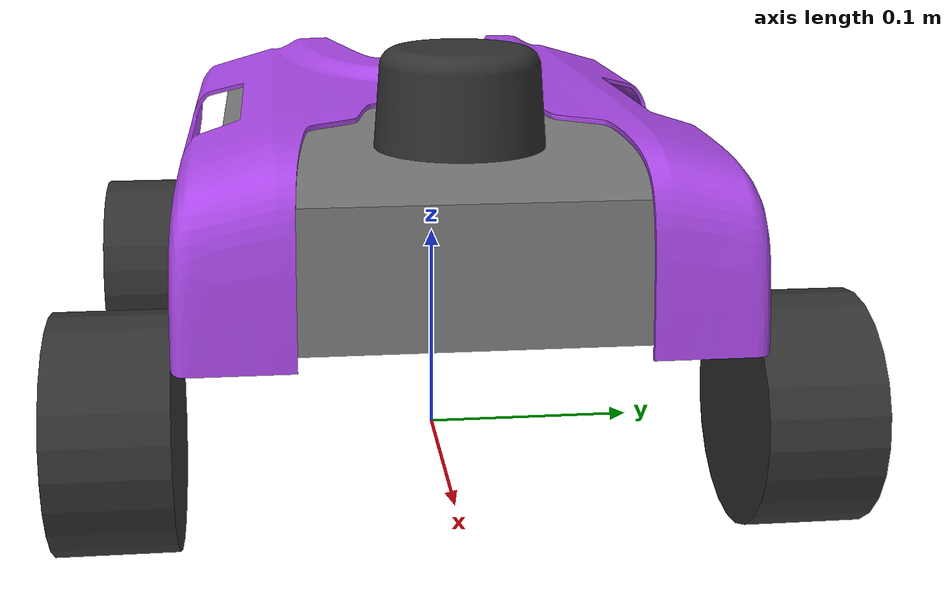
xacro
<?xml version="1.0"?>
<robot name="four_macnum" xmlns:xacro="http://ros.org/wiki/xacro">
  <xacro:include filename="$(find four_macnum_description)/urdf/four_macnum.gazebo.xacro"/>

  <link name="base_footprint"/>
  <joint name="base_joint" type="fixed">
    <origin xyz="0 0 0.12" rpy="0 0 0"/>
    <parent link="base_footprint"/>
    <child link="base_link"/>
  </joint>

  <link name="base_link">
    <inertial>
      <origin xyz="0 0 0" rpy="0 0 0"/>
      <mass value="6.0"/>
      <inertia ixx="2.18e-02" ixy="0.0" ixz="0.0" iyy="4.68e-02" iyz="0.0" izz="6.5e-02" />
    </inertial>
    <visual>
      <origin xyz="0 0 0" rpy="0 0 0"/>
      <geometry>
        <box size="0.3 0.2 0.06"/>
      </geometry>
      <material name="">
        <color rgba="0.5 0.5 0.5 0.9"/>
      </material>
    </visual>
    <collision>
      <origin xyz="0 0 0" rpy="0 0 0"/>
      <geometry>
        <box size="0.3 0.2 0.06"/>
      </geometry>
    </collision>
  </link>

  <link name="lidar_link">
    <inertial>
      <origin xyz="0 0 0" rpy="0 0 0"/>
      <mass value="0.00001"/>
      <inertia ixx="10" ixy="0.0" ixz="0.0" iyy="10" iyz="0.0" izz="10"/>
    </inertial>
    <visual>
      <origin xyz="0 0 0" rpy="1.5707 0 0"/>
      <geometry>
        <mesh filename="package://four_macnum_description/meshes/lidara2.stl" scale="0.001 0.001 0.001"/>
      </geometry>
      <material name="">
        <color rgba="0.2 0.2 0.2 1"/>
      </material>
    </visual>
    <collision>
      <origin xyz="0 0 0" rpy="1.5707 0 0"/>
      <geometry>
        <mesh filename="package://four_macnum_description/meshes/lidara2.stl" scale="0.001 0.001 0.001"/>
      </geometry>
    </collision>
  </link>

  <joint name="lidar_joint" type="fixed">
    <origin xyz="0.11 0 0.065" rpy="0 0 3.1416"/>
    <parent link="base_link"/>
    <child link="lidar_link"/>
  </joint>

  <link name='imu_link'/>
  <joint name='imu_joint' type='fixed'>
    <parent link='base_link'/>
    <child link='imu_link'/>
  </joint>

  <link name="shell_link">
    <inertial>
      <origin xyz="0 0 0" rpy="0 0 0"/>
      <mass value="0.00001"/>
      <inertia ixx="10" ixy="0.0" ixz="0.0" iyy="10" iyz="0.0" izz="10"/>
    </inertial>
    <visual>
      <origin xyz="0 0 0" rpy="0 0 0"/>
      <geometry>
        <mesh filename="package://four_macnum_description/meshes/shell.dae"/>
      </geometry>
      <material name="">
        <color rgba="0.675 0.282 0.921 1"/>
      </material>
    </visual>
    <collision>
      <origin xyz="0 0 0" rpy="0 0 0"/>
      <geometry>
        <mesh filename="package://four_macnum_description/meshes/shell.dae"/>
      </geometry>
    </collision>
  </link>

  <joint name="shell_joint" type="fixed">
    <origin xyz="-0.13 0 -0.03" rpy="0 0 -1.5707"/>
    <parent link="base_link"/>
    <child link="shell_link"/>
  </joint>

  <link name="wheel1_link">
    <inertial>
      <origin xyz="0 0 0" rpy="0 0 0"/>
      <mass value="0.00001"/>
      <inertia ixx="10" ixy="0.0" ixz="0.0" iyy="10" iyz="0.0" izz="10"/>
    </inertial>
    <visual>
      <origin xyz="0 0 0" rpy="0 0 0"/>
      <geometry>
        <cylinder length="0.05" radius="0.05"/>
      </geometry>
      <material name="">
        <color rgba="0.2 0.2 0.2 1"/>
      </material>
    </visual>
    <collision>
      <origin xyz="0 0 0" rpy="0 0 0"/>
      <geometry>
        <cylinder length="0.05" radius="0.05"/>
      </geometry>
    </collision>
  </link>

  <joint name="wheel1_joint" type="fixed">
    <origin xyz="0.1205 0.1425 -0.07" rpy="1.5707 0 0"/>
    <parent link="base_link"/>
    <child link="wheel1_link"/>
  </joint>

  <link name="wheel2_link">
    <inertial>
      <origin xyz="0 0 0" rpy="0 0 0"/>
      <mass value="0.00001"/>
      <inertia ixx="10" ixy="0.0" ixz="0.0" iyy="10" iyz="0.0" izz="10"/>
    </inertial>
    <visual>
      <origin xyz="0 0 0" rpy="0 0 0"/>
      <geometry>
        <cylinder length="0.05" radius="0.05"/>
      </geometry>
      <material name="">
        <color rgba="0.2 0.2 0.2 1"/>
      </material>
    </visual>
    <collision>
      <origin xyz="0 0 0" rpy="0 0 0"/>
      <geometry>
        <cylinder length="0.05" radius="0.05"/>
      </geometry>
    </collision>
  </link>

  <joint name="wheel2_joint" type="fixed">
    <origin xyz="0.1205 -0.1425 -0.07" rpy="1.5707 0 0"/>
    <parent link="base_link"/>
    <child link="wheel2_link"/>
  </joint>

  <link name="wheel3_link">
    <inertial>
      <origin xyz="0 0 0" rpy="0 0 0"/>
      <mass value="0.00001"/>
      <inertia ixx="10" ixy="0.0" ixz="0.0" iyy="10" iyz="0.0" izz="10"/>
    </inertial>
    <visual>
      <origin xyz="0 0 0" rpy="0 0 0"/>
      <geometry>
        <cylinder length="0.05" radius="0.05"/>
      </geometry>
      <material name="">
        <color rgba="0.2 0.2 0.2 1"/>
      </material>
    </visual>
    <collision>
      <origin xyz="0 0 0" rpy="0 0 0"/>
      <geometry>
        <cylinder length="0.05" radius="0.05"/>
      </geometry>
    </collision>
  </link>

  <joint name="wheel3_joint" type="fixed">
    <origin xyz="-0.1205 0.1425 -0.07" rpy="1.5707 0 0"/>
    <parent link="base_link"/>
    <child link="wheel3_link"/>
  </joint>

  <link name="wheel4_link">
    <inertial>
      <origin xyz="0 0 0" rpy="0 0 0"/>
      <mass value="0.00001"/>
      <inertia ixx="10" ixy="0.0" ixz="0.0" iyy="10" iyz="0.0" izz="10"/>
    </inertial>
    <visual>
      <origin xyz="0 0 0" rpy="0 0 0"/>
      <geometry>
        <cylinder length="0.05" radius="0.05"/>
      </geometry>
      <material name="">
        <color rgba="0.2 0.2 0.2 1"/>
      </material>
    </visual>
    <collision>
      <origin xyz="0 0 0" rpy="0 0 0"/>
      <geometry>
        <cylinder length="0.05" radius="0.05"/>
      </geometry>
    </collision>
  </link>

  <joint name="wheel4_joint" type="fixed">
    <origin xyz="-0.1205 -0.1425 -0.07" rpy="1.5707 0 0"/>
    <parent link="base_link"/>
    <child link="wheel4_link"/>
  </joint>
</robot>
